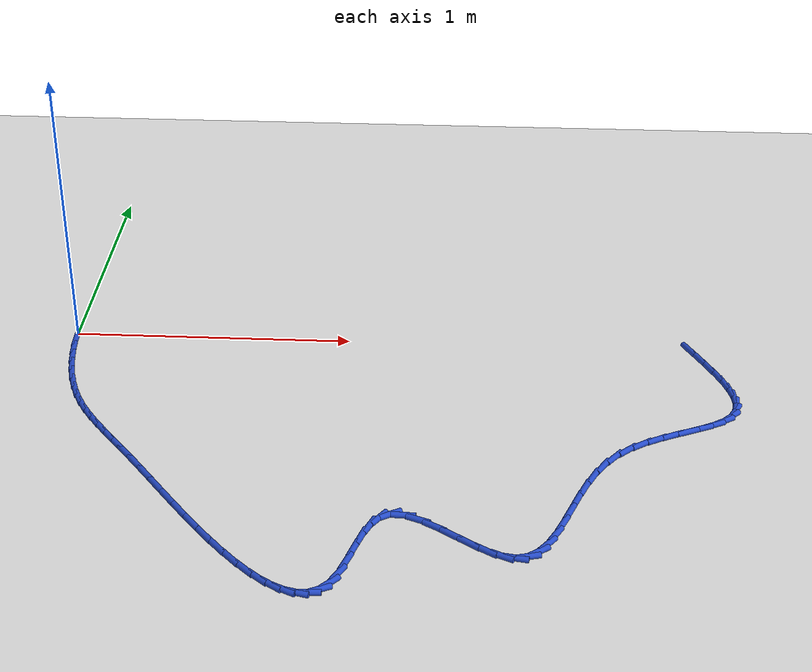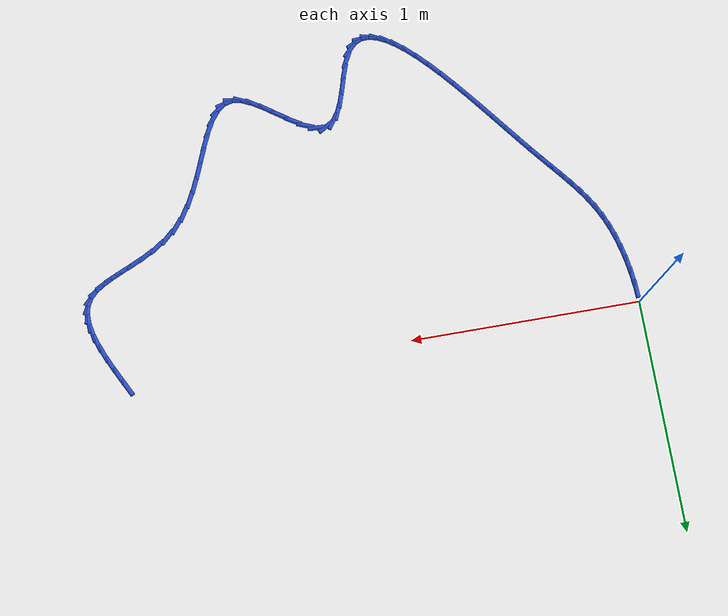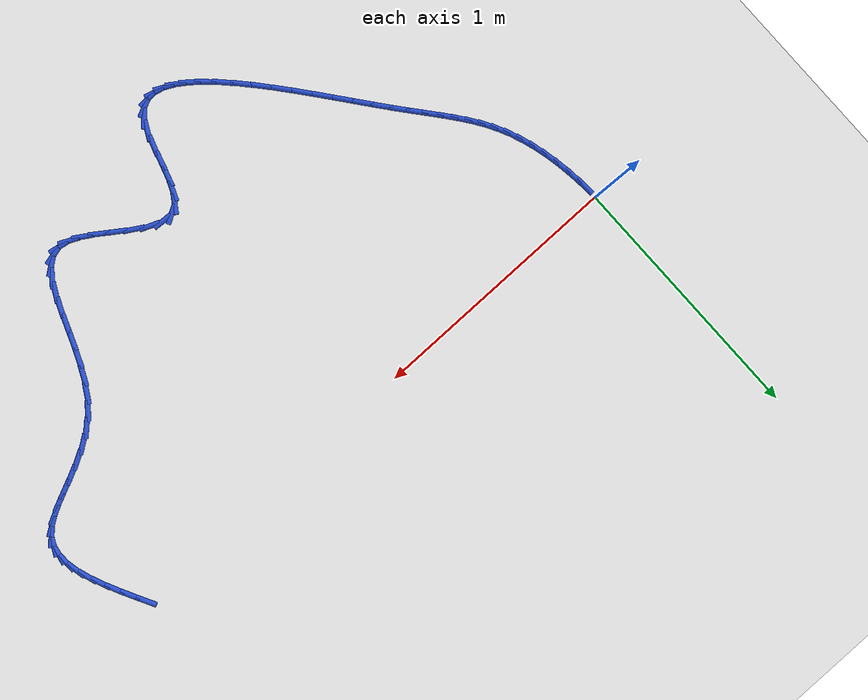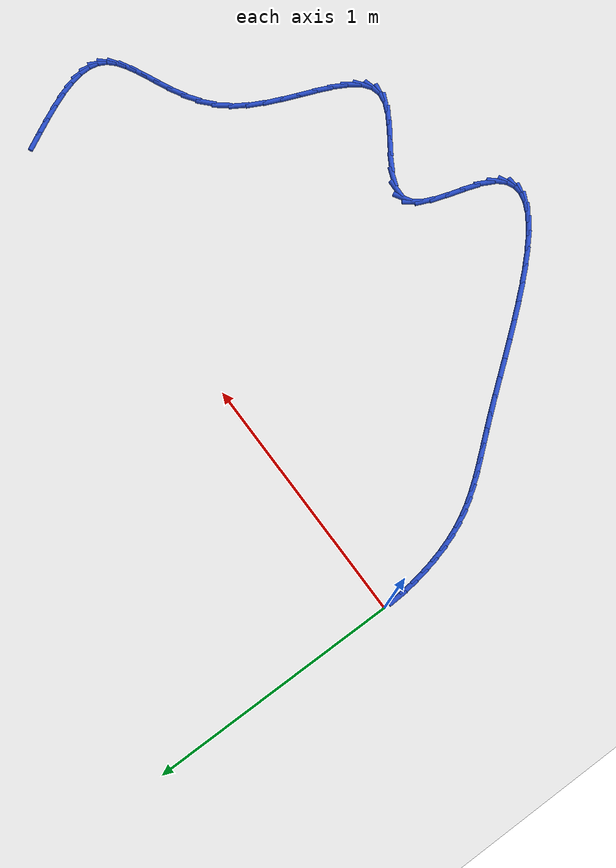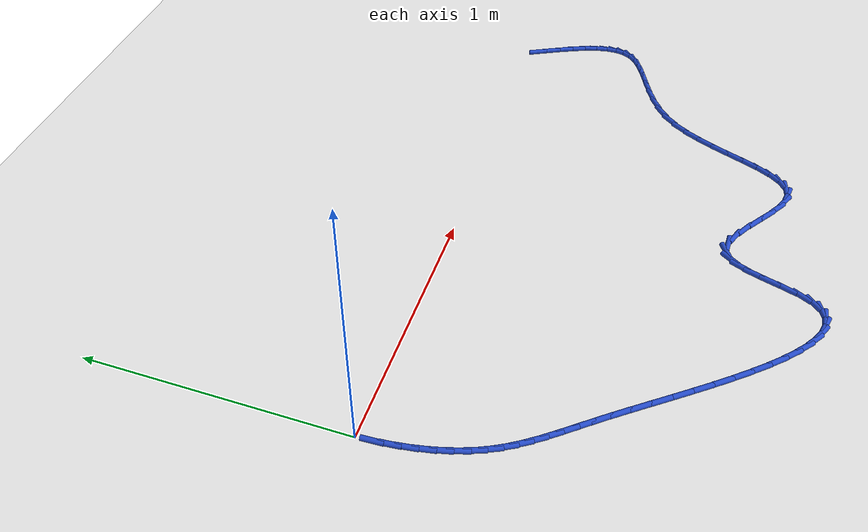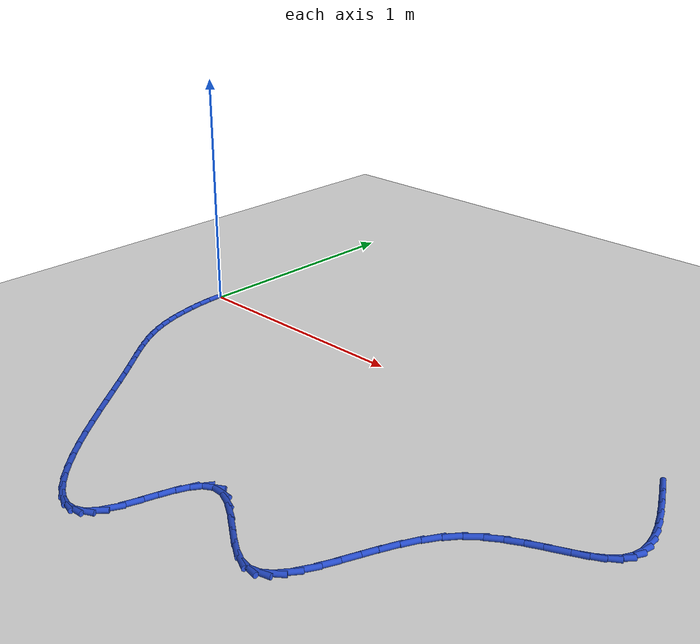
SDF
<sdf version="1.6">
 <world name="default">
  <model name="ground_plane">
   <static>1</static>
   <link name="link">
    <collision name="collision">
     <geometry><plane><normal>0 0 1</normal><size>100 100</size></plane></geometry>
     <surface><friction><ode><mu>100</mu><mu2>50</mu2></ode></friction></surface>
    </collision>
    <visual name="visual">
     <cast_shadows>0</cast_shadows>
     <geometry><plane><normal>0 0 1</normal><size>100 100</size></plane></geometry>
     <material>
      <script><uri>file://media/materials/scripts/gazebo.material</uri><name>Gazebo/WhiteGlow</name></script>
     </material>
    </visual>
   </link>
  </model>
  <model name="line">
   <link name="link_74">
    <pose>2.2299683839939872 -0.006319554969735637 0.01 0 1.57 -1.0922042768923768</pose>
    <collision name="collision">
     <geometry><cylinder><radius>0.01</radius><length>0.08</length></cylinder></geometry>
    </collision>
    <visual name="visual">
     <material>
      <script><name>Gazebo/Blue</name><uri>file://media/materials/scripts/gazebo.material</uri></script>
     </material>
     <geometry><cylinder><radius>0.01</radius><length>0.08</length></cylinder></geometry>
    </visual>
   </link>
   <link name="link_75">
    <pose>2.259123829067751 -0.0625149580404131 0.01 0 1.57 -1.1063408221054645</pose>
    <collision name="collision">
     <geometry><cylinder><radius>0.01</radius><length>0.08</length></cylinder></geometry>
    </collision>
    <visual name="visual">
     <material>
      <script><name>Gazebo/Blue</name><uri>file://media/materials/scripts/gazebo.material</uri></script>
     </material>
     <geometry><cylinder><radius>0.01</radius><length>0.08</length></cylinder></geometry>
    </visual>
   </link>
   <link name="link_76">
    <pose>2.286340790709857 -0.11683911632823811 0.01 0 1.57 -1.1362951058141415</pose>
    <collision name="collision">
     <geometry><cylinder><radius>0.01</radius><length>0.08</length></cylinder></geometry>
    </collision>
    <visual name="visual">
     <material>
      <script><name>Gazebo/Blue</name><uri>file://media/materials/scripts/gazebo.material</uri></script>
     </material>
     <geometry><cylinder><radius>0.01</radius><length>0.08</length></cylinder></geometry>
    </visual>
   </link>
   <link name="link_77">
    <pose>2.3105323561682303 -0.16896708870719052 0.01 0 1.57 -1.1861864969444749</pose>
    <collision name="collision">
     <geometry><cylinder><radius>0.01</radius><length>0.08</length></cylinder></geometry>
    </collision>
    <visual name="visual">
     <material>
      <script><name>Gazebo/Blue</name><uri>file://media/materials/scripts/gazebo.material</uri></script>
     </material>
     <geometry><cylinder><radius>0.01</radius><length>0.08</length></cylinder></geometry>
    </visual>
   </link>
   <link name="link_78">
    <pose>2.3306116126907956 -0.21857393405124986 0.01 0 1.57 -1.2627123637039737</pose>
    <collision name="collision">
     <geometry><cylinder><radius>0.01</radius><length>0.08</length></cylinder></geometry>
    </collision>
    <visual name="visual">
     <material>
      <script><name>Gazebo/Blue</name><uri>file://media/materials/scripts/gazebo.material</uri></script>
     </material>
     <geometry><cylinder><radius>0.01</radius><length>0.08</length></cylinder></geometry>
    </visual>
   </link>
   <link name="link_79">
    <pose>2.345491647525479 -0.26533471123439817 0.01 0 1.57 -1.376138724352128</pose>
    <collision name="collision">
     <geometry><cylinder><radius>0.01</radius><length>0.08</length></cylinder></geometry>
    </collision>
    <visual name="visual">
     <material>
      <script><name>Gazebo/Blue</name><uri>file://media/materials/scripts/gazebo.material</uri></script>
     </material>
     <geometry><cylinder><radius>0.01</radius><length>0.08</length></cylinder></geometry>
    </visual>
   </link>
   <link name="link_80">
    <pose>2.3540855479202034 -0.3089244791306141 0.01 0 1.57 -1.5403558208711114</pose>
    <collision name="collision">
     <geometry><cylinder><radius>0.01</radius><length>0.08</length></cylinder></geometry>
    </collision>
    <visual name="visual">
     <material>
      <script><name>Gazebo/Blue</name><uri>file://media/materials/scripts/gazebo.material</uri></script>
     </material>
     <geometry><cylinder><radius>0.01</radius><length>0.08</length></cylinder></geometry>
    </visual>
   </link>
   <link name="link_81">
    <pose>2.355306401122896 -0.34901829661387934 0.01 0 1.57 1.3738111099971873</pose>
    <collision name="collision">
     <geometry><cylinder><radius>0.01</radius><length>0.08</length></cylinder></geometry>
    </collision>
    <visual name="visual">
     <material>
      <script><name>Gazebo/Blue</name><uri>file://media/materials/scripts/gazebo.material</uri></script>
     </material>
     <geometry><cylinder><radius>0.01</radius><length>0.08</length></cylinder></geometry>
    </visual>
   </link>
   <link name="link_82">
    <pose>2.34806729438148 -0.3852912225581739 0.01 0 1.57 1.0893216006785125</pose>
    <collision name="collision">
     <geometry><cylinder><radius>0.01</radius><length>0.08</length></cylinder></geometry>
    </collision>
    <visual name="visual">
     <material>
      <script><name>Gazebo/Blue</name><uri>file://media/materials/scripts/gazebo.material</uri></script>
     </material>
     <geometry><cylinder><radius>0.01</radius><length>0.08</length></cylinder></geometry>
    </visual>
   </link>
   <link name="link_83">
    <pose>2.3312813149438822 -0.4174183158374772 0.01 0 1.57 0.7976024774090971</pose>
    <collision name="collision">
     <geometry><cylinder><radius>0.01</radius><length>0.08</length></cylinder></geometry>
    </collision>
    <visual name="visual">
     <material>
      <script><name>Gazebo/Blue</name><uri>file://media/materials/scripts/gazebo.material</uri></script>
     </material>
     <geometry><cylinder><radius>0.01</radius><length>0.08</length></cylinder></geometry>
    </visual>
   </link>
   <link name="link_84">
    <pose>2.3041346893864136 -0.44523577363365213 0.01 0 1.57 0.5924344706142887</pose>
    <collision name="collision">
     <geometry><cylinder><radius>0.01</radius><length>0.08</length></cylinder></geometry>
    </collision>
    <visual name="visual">
     <material>
      <script><name>Gazebo/Blue</name><uri>file://media/materials/scripts/gazebo.material</uri></script>
     </material>
     <geometry><cylinder><radius>0.01</radius><length>0.08</length></cylinder></geometry>
    </visual>
   </link>
   <link name="link_85">
    <pose>2.267752929605369 -0.4697238728068877 0.01 0 1.57 0.4783433600173599</pose>
    <collision name="collision">
     <geometry><cylinder><radius>0.01</radius><length>0.08</length></cylinder></geometry>
    </collision>
    <visual name="visual">
     <material>
      <script><name>Gazebo/Blue</name><uri>file://media/materials/scripts/gazebo.material</uri></script>
     </material>
     <geometry><cylinder><radius>0.01</radius><length>0.08</length></cylinder></geometry>
    </visual>
   </link>
   <link name="link_86">
    <pose>2.2241006208641996 -0.4923579008164359 0.01 0 1.57 0.4267119151776207</pose>
    <collision name="collision">
     <geometry><cylinder><radius>0.01</radius><length>0.08</length></cylinder></geometry>
    </collision>
    <visual name="visual">
     <material>
      <script><name>Gazebo/Blue</name><uri>file://media/materials/scripts/gazebo.material</uri></script>
     </material>
     <geometry><cylinder><radius>0.01</radius><length>0.08</length></cylinder></geometry>
    </visual>
   </link>
   <link name="link_87">
    <pose>2.1751457020671645 -0.5146151235990076 0.01 0 1.57 0.4201050400710591</pose>
    <collision name="collision">
     <geometry><cylinder><radius>0.01</radius><length>0.08</length></cylinder></geometry>
    </collision>
    <visual name="visual">
     <material>
      <script><name>Gazebo/Blue</name><uri>file://media/materials/scripts/gazebo.material</uri></script>
     </material>
     <geometry><cylinder><radius>0.01</radius><length>0.08</length></cylinder></geometry>
    </visual>
   </link>
   <link name="link_88">
    <pose>2.1228561121185248 -0.5379728070913146 0.01 0 1.57 0.4502485761168221</pose>
    <collision name="collision">
     <geometry><cylinder><radius>0.01</radius><length>0.08</length></cylinder></geometry>
    </collision>
    <visual name="visual">
     <material>
      <script><name>Gazebo/Blue</name><uri>file://media/materials/scripts/gazebo.material</uri></script>
     </material>
     <geometry><cylinder><radius>0.01</radius><length>0.08</length></cylinder></geometry>
    </visual>
   </link>
   <link name="link_89">
    <pose>2.0691997899225374 -0.5639082172300687 0.01 0 1.57 0.5144902913362136</pose>
    <collision name="collision">
     <geometry><cylinder><radius>0.01</radius><length>0.08</length></cylinder></geometry>
    </collision>
    <visual name="visual">
     <material>
      <script><name>Gazebo/Blue</name><uri>file://media/materials/scripts/gazebo.material</uri></script>
     </material>
     <geometry><cylinder><radius>0.01</radius><length>0.08</length></cylinder></geometry>
    </visual>
   </link>
   <link name="link_90">
    <pose>2.016144674383462 -0.5938986199519815 0.01 0 1.57 0.6131476958005838</pose>
    <collision name="collision">
     <geometry><cylinder><radius>0.01</radius><length>0.08</length></cylinder></geometry>
    </collision>
    <visual name="visual">
     <material>
      <script><name>Gazebo/Blue</name><uri>file://media/materials/scripts/gazebo.material</uri></script>
     </material>
     <geometry><cylinder><radius>0.01</radius><length>0.08</length></cylinder></geometry>
    </visual>
   </link>
   <link name="link_91">
    <pose>1.9656587044055591 -0.629421281193764 0.01 0 1.57 0.7468023027524521</pose>
    <collision name="collision">
     <geometry><cylinder><radius>0.01</radius><length>0.08</length></cylinder></geometry>
    </collision>
    <visual name="visual">
     <material>
      <script><name>Gazebo/Blue</name><uri>file://media/materials/scripts/gazebo.material</uri></script>
     </material>
     <geometry><cylinder><radius>0.01</radius><length>0.08</length></cylinder></geometry>
    </visual>
   </link>
   <link name="link_92">
    <pose>1.9197098188930868 -0.6719534668921291 0.01 0 1.57 0.902065421191802</pose>
    <collision name="collision">
     <geometry><cylinder><radius>0.01</radius><length>0.08</length></cylinder></geometry>
    </collision>
    <visual name="visual">
     <material>
      <script><name>Gazebo/Blue</name><uri>file://media/materials/scripts/gazebo.material</uri></script>
     </material>
     <geometry><cylinder><radius>0.01</radius><length>0.08</length></cylinder></geometry>
    </visual>
   </link>
   <link name="link_93">
    <pose>1.879822426590228 -0.7224316591413881 0.01 0 1.57 1.0268395971347895</pose>
    <collision name="collision">
     <geometry><cylinder><radius>0.01</radius><length>0.08</length></cylinder></geometry>
    </collision>
    <visual name="visual">
     <material>
      <script><name>Gazebo/Blue</name><uri>file://media/materials/scripts/gazebo.material</uri></script>
     </material>
     <geometry><cylinder><radius>0.01</radius><length>0.08</length></cylinder></geometry>
    </visual>
   </link>
   <link name="link_94">
    <pose>1.845448296680701 -0.7792652289478047 0.01 0 1.57 1.1126363051756467</pose>
    <collision name="collision">
     <geometry><cylinder><radius>0.01</radius><length>0.08</length></cylinder></geometry>
    </collision>
    <visual name="visual">
     <material>
      <script><name>Gazebo/Blue</name><uri>file://media/materials/scripts/gazebo.material</uri></script>
     </material>
     <geometry><cylinder><radius>0.01</radius><length>0.08</length></cylinder></geometry>
    </visual>
   </link>
   <link name="link_95">
    <pose>1.8154342629567497 -0.840125966618846 0.01 0 1.57 1.1659597023779358</pose>
    <collision name="collision">
     <geometry><cylinder><radius>0.01</radius><length>0.08</length></cylinder></geometry>
    </collision>
    <visual name="visual">
     <material>
      <script><name>Gazebo/Blue</name><uri>file://media/materials/scripts/gazebo.material</uri></script>
     </material>
     <geometry><cylinder><radius>0.01</radius><length>0.08</length></cylinder></geometry>
    </visual>
   </link>
   <link name="link_96">
    <pose>1.7886270870784948 -0.902685574513312 0.01 0 1.57 1.1905477166966383</pose>
    <collision name="collision">
     <geometry><cylinder><radius>0.01</radius><length>0.08</length></cylinder></geometry>
    </collision>
    <visual name="visual">
     <material>
      <script><name>Gazebo/Blue</name><uri>file://media/materials/scripts/gazebo.material</uri></script>
     </material>
     <geometry><cylinder><radius>0.01</radius><length>0.08</length></cylinder></geometry>
    </visual>
   </link>
   <link name="link_97">
    <pose>1.7638735307060573 -0.964615754990007 0.01 0 1.57 1.1864339087499163</pose>
    <collision name="collision">
     <geometry><cylinder><radius>0.01</radius><length>0.08</length></cylinder></geometry>
    </collision>
    <visual name="visual">
     <material>
      <script><name>Gazebo/Blue</name><uri>file://media/materials/scripts/gazebo.material</uri></script>
     </material>
     <geometry><cylinder><radius>0.01</radius><length>0.08</length></cylinder></geometry>
    </visual>
   </link>
   <link name="link_98">
    <pose>1.7400203554995584 -1.0235882104077298 0.01 0 1.57 1.1487615380157024</pose>
    <collision name="collision">
     <geometry><cylinder><radius>0.01</radius><length>0.08</length></cylinder></geometry>
    </collision>
    <visual name="visual">
     <material>
      <script><name>Gazebo/Blue</name><uri>file://media/materials/scripts/gazebo.material</uri></script>
     </material>
     <geometry><cylinder><radius>0.01</radius><length>0.08</length></cylinder></geometry>
    </visual>
   </link>
   <link name="link_99">
    <pose>1.7159143231191183 -1.0772746431252849 0.01 0 1.57 1.0650836523124063</pose>
    <collision name="collision">
     <geometry><cylinder><radius>0.01</radius><length>0.08</length></cylinder></geometry>
    </collision>
    <visual name="visual">
     <material>
      <script><name>Gazebo/Blue</name><uri>file://media/materials/scripts/gazebo.material</uri></script>
     </material>
     <geometry><cylinder><radius>0.01</radius><length>0.08</length></cylinder></geometry>
    </visual>
   </link>
   <link name="link_100">
    <pose>1.6904021952248585 -1.1233467555014724 0.01 0 1.57 0.9102578969189291</pose>
    <collision name="collision">
     <geometry><cylinder><radius>0.01</radius><length>0.08</length></cylinder></geometry>
    </collision>
    <visual name="visual">
     <material>
      <script><name>Gazebo/Blue</name><uri>file://media/materials/scripts/gazebo.material</uri></script>
     </material>
     <geometry><cylinder><radius>0.01</radius><length>0.08</length></cylinder></geometry>
    </visual>
   </link>
   <link name="link_101">
    <pose>1.6623307334769009 -1.1594762498950932 0.01 0 1.57 0.6439148397358285</pose>
    <collision name="collision">
     <geometry><cylinder><radius>0.01</radius><length>0.08</length></cylinder></geometry>
    </collision>
    <visual name="visual">
     <material>
      <script><name>Gazebo/Blue</name><uri>file://media/materials/scripts/gazebo.material</uri></script>
     </material>
     <geometry><cylinder><radius>0.01</radius><length>0.08</length></cylinder></geometry>
    </visual>
   </link>
   <link name="link_102">
    <pose>1.6305466995353646 -1.1833348286649503 0.01 0 1.57 0.24746563778720343</pose>
    <collision name="collision">
     <geometry><cylinder><radius>0.01</radius><length>0.08</length></cylinder></geometry>
    </collision>
    <visual name="visual">
     <material>
      <script><name>Gazebo/Blue</name><uri>file://media/materials/scripts/gazebo.material</uri></script>
     </material>
     <geometry><cylinder><radius>0.01</radius><length>0.08</length></cylinder></geometry>
    </visual>
   </link>
   <link name="link_103">
    <pose>1.5938968550603718 -1.1925941941698446 0.01 0 1.57 -0.17450461990742774</pose>
    <collision name="collision">
     <geometry><cylinder><radius>0.01</radius><length>0.08</length></cylinder></geometry>
    </collision>
    <visual name="visual">
     <material>
      <script><name>Gazebo/Blue</name><uri>file://media/materials/scripts/gazebo.material</uri></script>
     </material>
     <geometry><cylinder><radius>0.01</radius><length>0.08</length></cylinder></geometry>
    </visual>
   </link>
   <link name="link_104">
    <pose>1.5512905062631321 -1.185082788801884 0.01 0 1.57 -0.44148129106460243</pose>
    <collision name="collision">
     <geometry><cylinder><radius>0.01</radius><length>0.08</length></cylinder></geometry>
    </collision>
    <visual name="visual">
     <material>
      <script><name>Gazebo/Blue</name><uri>file://media/materials/scripts/gazebo.material</uri></script>
     </material>
     <geometry><cylinder><radius>0.01</radius><length>0.08</length></cylinder></geometry>
    </visual>
   </link>
   <link name="link_105">
    <pose>1.5031063224754593 -1.1623113585345004 0.01 0 1.57 -0.5635658494570346</pose>
    <collision name="collision">
     <geometry><cylinder><radius>0.01</radius><length>0.08</length></cylinder></geometry>
    </collision>
    <visual name="visual">
     <material>
      <script><name>Gazebo/Blue</name><uri>file://media/materials/scripts/gazebo.material</uri></script>
     </material>
     <geometry><cylinder><radius>0.01</radius><length>0.08</length></cylinder></geometry>
    </visual>
   </link>
   <link name="link_106">
    <pose>1.4512096756053527 -1.1295164065374654 0.01 0 1.57 -0.6087493829037802</pose>
    <collision name="collision">
     <geometry><cylinder><radius>0.01</radius><length>0.08</length></cylinder></geometry>
    </collision>
    <visual name="visual">
     <material>
      <script><name>Gazebo/Blue</name><uri>file://media/materials/scripts/gazebo.material</uri></script>
     </material>
     <geometry><cylinder><radius>0.01</radius><length>0.08</length></cylinder></geometry>
    </visual>
   </link>
   <link name="link_107">
    <pose>1.3975319501526307 -1.0920998671118147 0.01 0 1.57 -0.6002050422156614</pose>
    <collision name="collision">
     <geometry><cylinder><radius>0.01</radius><length>0.08</length></cylinder></geometry>
    </collision>
    <visual name="visual">
     <material>
      <script><name>Gazebo/Blue</name><uri>file://media/materials/scripts/gazebo.material</uri></script>
     </material>
     <geometry><cylinder><radius>0.01</radius><length>0.08</length></cylinder></geometry>
    </visual>
   </link>
   <link name="link_108">
    <pose>1.344004530617115 -1.055463674558586 0.01 0 1.57 -0.5344881655870558</pose>
    <collision name="collision">
     <geometry><cylinder><radius>0.01</radius><length>0.08</length></cylinder></geometry>
    </collision>
    <visual name="visual">
     <material>
      <script><name>Gazebo/Blue</name><uri>file://media/materials/scripts/gazebo.material</uri></script>
     </material>
     <geometry><cylinder><radius>0.01</radius><length>0.08</length></cylinder></geometry>
    </visual>
   </link>
   <link name="link_109">
    <pose>1.2925588014986265 -1.025009763178817 0.01 0 1.57 -0.3786263361455057</pose>
    <collision name="collision">
     <geometry><cylinder><radius>0.01</radius><length>0.08</length></cylinder></geometry>
    </collision>
    <visual name="visual">
     <material>
      <script><name>Gazebo/Blue</name><uri>file://media/materials/scripts/gazebo.material</uri></script>
     </material>
     <geometry><cylinder><radius>0.01</radius><length>0.08</length></cylinder></geometry>
    </visual>
   </link>
   <link name="link_110">
    <pose>1.245126147296984 -1.0061400672735437 0.01 0 1.57 -0.04536841541199422</pose>
    <collision name="collision">
     <geometry><cylinder><radius>0.01</radius><length>0.08</length></cylinder></geometry>
    </collision>
    <visual name="visual">
     <material>
      <script><name>Gazebo/Blue</name><uri>file://media/materials/scripts/gazebo.material</uri></script>
     </material>
     <geometry><cylinder><radius>0.01</radius><length>0.08</length></cylinder></geometry>
    </visual>
   </link>
   <link name="link_111">
    <pose>1.203637952512009 -1.004256521143804 0.01 0 1.57 0.5296415931006878</pose>
    <collision name="collision">
     <geometry><cylinder><radius>0.01</radius><length>0.08</length></cylinder></geometry>
    </collision>
    <visual name="visual">
     <material>
      <script><name>Gazebo/Blue</name><uri>file://media/materials/scripts/gazebo.material</uri></script>
     </material>
     <geometry><cylinder><radius>0.01</radius><length>0.08</length></cylinder></geometry>
    </visual>
   </link>
   <link name="link_112">
    <pose>1.169790103126992 -1.0240722593952762 0.01 0 1.57 0.9711557230959347</pose>
    <collision name="collision">
     <geometry><cylinder><radius>0.01</radius><length>0.08</length></cylinder></geometry>
    </collision>
    <visual name="visual">
     <material>
      <script><name>Gazebo/Blue</name><uri>file://media/materials/scripts/gazebo.material</uri></script>
     </material>
     <geometry><cylinder><radius>0.01</radius><length>0.08</length></cylinder></geometry>
    </visual>
   </link>
   <link name="link_113">
    <pose>1.1429145992257956 -1.0633863862975745 0.01 0 1.57 1.1758360274266306</pose>
    <collision name="collision">
     <geometry><cylinder><radius>0.01</radius><length>0.08</length></cylinder></geometry>
    </collision>
    <visual name="visual">
     <material>
      <script><name>Gazebo/Blue</name><uri>file://media/materials/scripts/gazebo.material</uri></script>
     </material>
     <geometry><cylinder><radius>0.01</radius><length>0.08</length></cylinder></geometry>
    </visual>
   </link>
   <link name="link_114">
    <pose>1.1209789131187369 -1.116006956288762 0.01 0 1.57 1.2619275055778354</pose>
    <collision name="collision">
     <geometry><cylinder><radius>0.01</radius><length>0.08</length></cylinder></geometry>
    </collision>
    <visual name="visual">
     <material>
      <script><name>Gazebo/Blue</name><uri>file://media/materials/scripts/gazebo.material</uri></script>
     </material>
     <geometry><cylinder><radius>0.01</radius><length>0.08</length></cylinder></geometry>
    </visual>
   </link>
   <link name="link_115">
    <pose>1.1019340105336337 -1.1756937443987663 0.01 0 1.57 1.2785919779409618</pose>
    <collision name="collision">
     <geometry><cylinder><radius>0.01</radius><length>0.08</length></cylinder></geometry>
    </collision>
    <visual name="visual">
     <material>
      <script><name>Gazebo/Blue</name><uri>file://media/materials/scripts/gazebo.material</uri></script>
     </material>
     <geometry><cylinder><radius>0.01</radius><length>0.08</length></cylinder></geometry>
    </visual>
   </link>
   <link name="link_116">
    <pose>1.0837308571983046 -1.236206525657512 0.01 0 1.57 1.2320865841872812</pose>
    <collision name="collision">
     <geometry><cylinder><radius>0.01</radius><length>0.08</length></cylinder></geometry>
    </collision>
    <visual name="visual">
     <material>
      <script><name>Gazebo/Blue</name><uri>file://media/materials/scripts/gazebo.material</uri></script>
     </material>
     <geometry><cylinder><radius>0.01</radius><length>0.08</length></cylinder></geometry>
    </visual>
   </link>
   <link name="link_117">
    <pose>1.0643204188405693 -1.2913050750949246 0.01 0 1.57 1.0908135275455617</pose>
    <collision name="collision">
     <geometry><cylinder><radius>0.01</radius><length>0.08</length></cylinder></geometry>
    </collision>
    <visual name="visual">
     <material>
      <script><name>Gazebo/Blue</name><uri>file://media/materials/scripts/gazebo.material</uri></script>
     </material>
     <geometry><cylinder><radius>0.01</radius><length>0.08</length></cylinder></geometry>
    </visual>
   </link>
   <link name="link_118">
    <pose>1.0416731814579454 -1.3348081805816396 0.01 0 1.57 0.8153977529518763</pose>
    <collision name="collision">
     <geometry><cylinder><radius>0.01</radius><length>0.08</length></cylinder></geometry>
    </collision>
    <visual name="visual">
     <material>
      <script><name>Gazebo/Blue</name><uri>file://media/materials/scripts/gazebo.material</uri></script>
     </material>
     <geometry><cylinder><radius>0.01</radius><length>0.08</length></cylinder></geometry>
    </visual>
   </link>
   <link name="link_119">
    <pose>1.014717817710756 -1.3634313787406962 0.01 0 1.57 0.4409889785306531</pose>
    <collision name="collision">
     <geometry><cylinder><radius>0.01</radius><length>0.08</length></cylinder></geometry>
    </collision>
    <visual name="visual">
     <material>
      <script><name>Gazebo/Blue</name><uri>file://media/materials/scripts/gazebo.material</uri></script>
     </material>
     <geometry><cylinder><radius>0.01</radius><length>0.08</length></cylinder></geometry>
    </visual>
   </link>
   <link name="link_120">
    <pose>0.9837571513578881 -1.3780444807586554 0.01 0 1.57 0.051856923489776774</pose>
    <collision name="collision">
     <geometry><cylinder><radius>0.01</radius><length>0.08</length></cylinder></geometry>
    </collision>
    <visual name="visual">
     <material>
      <script><name>Gazebo/Blue</name><uri>file://media/materials/scripts/gazebo.material</uri></script>
     </material>
     <geometry><cylinder><radius>0.01</radius><length>0.08</length></cylinder></geometry>
    </visual>
   </link>
   <link name="link_121">
    <pose>0.9492001243974414 -1.3798381099237047 0.01 0 1.57 -0.25490561904372655</pose>
    <collision name="collision">
     <geometry><cylinder><radius>0.01</radius><length>0.08</length></cylinder></geometry>
    </collision>
    <visual name="visual">
     <material>
      <script><name>Gazebo/Blue</name><uri>file://media/materials/scripts/gazebo.material</uri></script>
     </material>
     <geometry><cylinder><radius>0.01</radius><length>0.08</length></cylinder></geometry>
    </visual>
   </link>
   <link name="link_122">
    <pose>0.9114556788275154 -1.37000288952403 0.01 0 1.57 -0.46388419939168096</pose>
    <collision name="collision">
     <geometry><cylinder><radius>0.01</radius><length>0.08</length></cylinder></geometry>
    </collision>
    <visual name="visual">
     <material>
      <script><name>Gazebo/Blue</name><uri>file://media/materials/scripts/gazebo.material</uri></script>
     </material>
     <geometry><cylinder><radius>0.01</radius><length>0.08</length></cylinder></geometry>
    </visual>
   </link>
   <link name="link_123">
    <pose>0.8709327566462087 -1.349729442847818 0.01 0 1.57 -0.602801455201303</pose>
    <collision name="collision">
     <geometry><cylinder><radius>0.01</radius><length>0.08</length></cylinder></geometry>
    </collision>
    <visual name="visual">
     <material>
      <script><name>Gazebo/Blue</name><uri>file://media/materials/scripts/gazebo.material</uri></script>
     </material>
     <geometry><cylinder><radius>0.01</radius><length>0.08</length></cylinder></geometry>
    </visual>
   </link>
   <link name="link_124">
    <pose>0.8280402998516205 -1.3202083931832556 0.01 0 1.57 -0.6973704515516351</pose>
    <collision name="collision">
     <geometry><cylinder><radius>0.01</radius><length>0.08</length></cylinder></geometry>
    </collision>
    <visual name="visual">
     <material>
      <script><name>Gazebo/Blue</name><uri>file://media/materials/scripts/gazebo.material</uri></script>
     </material>
     <geometry><cylinder><radius>0.01</radius><length>0.08</length></cylinder></geometry>
    </visual>
   </link>
   <link name="link_125">
    <pose>0.7831872504418511 -1.2826303638185297 0.01 0 1.57 -0.7638238120553639</pose>
    <collision name="collision">
     <geometry><cylinder><radius>0.01</radius><length>0.08</length></cylinder></geometry>
    </collision>
    <visual name="visual">
     <material>
      <script><name>Gazebo/Blue</name><uri>file://media/materials/scripts/gazebo.material</uri></script>
     </material>
     <geometry><cylinder><radius>0.01</radius><length>0.08</length></cylinder></geometry>
    </visual>
   </link>
   <link name="link_126">
    <pose>0.7367825504149987 -1.2381859780418267 0.01 0 1.57 -0.811733584394263</pose>
    <collision name="collision">
     <geometry><cylinder><radius>0.01</radius><length>0.08</length></cylinder></geometry>
    </collision>
    <visual name="visual">
     <material>
      <script><name>Gazebo/Blue</name><uri>file://media/materials/scripts/gazebo.material</uri></script>
     </material>
     <geometry><cylinder><radius>0.01</radius><length>0.08</length></cylinder></geometry>
    </visual>
   </link>
   <link name="link_127">
    <pose>0.6892351417691639 -1.1880658591413342 0.01 0 1.57 -0.8467872964309262</pose>
    <collision name="collision">
     <geometry><cylinder><radius>0.01</radius><length>0.08</length></cylinder></geometry>
    </collision>
    <visual name="visual">
     <material>
      <script><name>Gazebo/Blue</name><uri>file://media/materials/scripts/gazebo.material</uri></script>
     </material>
     <geometry><cylinder><radius>0.01</radius><length>0.08</length></cylinder></geometry>
    </visual>
   </link>
   <link name="link_128">
    <pose>0.6409539665024443 -1.1334606304052373 0.01 0 1.57 -0.8724379436107929</pose>
    <collision name="collision">
     <geometry><cylinder><radius>0.01</radius><length>0.08</length></cylinder></geometry>
    </collision>
    <visual name="visual">
     <material>
      <script><name>Gazebo/Blue</name><uri>file://media/materials/scripts/gazebo.material</uri></script>
     </material>
     <geometry><cylinder><radius>0.01</radius><length>0.08</length></cylinder></geometry>
    </visual>
   </link>
   <link name="link_129">
    <pose>0.5923479666129398 -1.0755609151217227 0.01 0 1.57 -0.8908033180707602</pose>
    <collision name="collision">
     <geometry><cylinder><radius>0.01</radius><length>0.08</length></cylinder></geometry>
    </collision>
    <visual name="visual">
     <material>
      <script><name>Gazebo/Blue</name><uri>file://media/materials/scripts/gazebo.material</uri></script>
     </material>
     <geometry><cylinder><radius>0.01</radius><length>0.08</length></cylinder></geometry>
    </visual>
   </link>
   <link name="link_130">
    <pose>0.5438260840987504 -1.0155573365789794 0.01 0 1.57 -0.9031484057669649</pose>
    <collision name="collision">
     <geometry><cylinder><radius>0.01</radius><length>0.08</length></cylinder></geometry>
    </collision>
    <visual name="visual">
     <material>
      <script><name>Gazebo/Blue</name><uri>file://media/materials/scripts/gazebo.material</uri></script>
     </material>
     <geometry><cylinder><radius>0.01</radius><length>0.08</length></cylinder></geometry>
    </visual>
   </link>
   <link name="link_131">
    <pose>0.4957972609579745 -0.9546405180651913 0.01 0 1.57 -0.9101353348853791</pose>
    <collision name="collision">
     <geometry><cylinder><radius>0.01</radius><length>0.08</length></cylinder></geometry>
    </collision>
    <visual name="visual">
     <material>
      <script><name>Gazebo/Blue</name><uri>file://media/materials/scripts/gazebo.material</uri></script>
     </material>
     <geometry><cylinder><radius>0.01</radius><length>0.08</length></cylinder></geometry>
    </visual>
   </link>
   <link name="link_132">
    <pose>0.44867043918871213 -0.8940010828685472 0.01 0 1.57 -0.9119296395037867</pose>
    <collision name="collision">
     <geometry><cylinder><radius>0.01</radius><length>0.08</length></cylinder></geometry>
    </collision>
    <visual name="visual">
     <material>
      <script><name>Gazebo/Blue</name><uri>file://media/materials/scripts/gazebo.material</uri></script>
     </material>
     <geometry><cylinder><radius>0.01</radius><length>0.08</length></cylinder></geometry>
    </visual>
   </link>
   <link name="link_133">
    <pose>0.4028545607890613 -0.8348296542772315 0.01 0 1.57 -0.9081939196930185</pose>
    <collision name="collision">
     <geometry><cylinder><radius>0.01</radius><length>0.08</length></cylinder></geometry>
    </collision>
    <visual name="visual">
     <material>
      <script><name>Gazebo/Blue</name><uri>file://media/materials/scripts/gazebo.material</uri></script>
     </material>
     <geometry><cylinder><radius>0.01</radius><length>0.08</length></cylinder></geometry>
    </visual>
   </link>
   <link name="link_134">
    <pose>0.3587585677571222 -0.778316855579433 0.01 0 1.57 -0.8980597775120849</pose>
    <collision name="collision">
     <geometry><cylinder><radius>0.01</radius><length>0.08</length></cylinder></geometry>
    </collision>
    <visual name="visual">
     <material>
      <script><name>Gazebo/Blue</name><uri>file://media/materials/scripts/gazebo.material</uri></script>
     </material>
     <geometry><cylinder><radius>0.01</radius><length>0.08</length></cylinder></geometry>
    </visual>
   </link>
   <link name="link_135">
    <pose>0.31678905430629095 -0.7256388558164238 0.01 0 1.57 -0.8862975275433108</pose>
    <collision name="collision">
     <geometry><cylinder><radius>0.01</radius><length>0.08</length></cylinder></geometry>
    </collision>
    <visual name="visual">
     <material>
      <script><name>Gazebo/Blue</name><uri>file://media/materials/scripts/gazebo.material</uri></script>
     </material>
     <geometry><cylinder><radius>0.01</radius><length>0.08</length></cylinder></geometry>
    </visual>
   </link>
   <link name="link_136">
    <pose>0.27721993408971185 -0.6771549699220258 0.01 0 1.57 -0.8832141395624851</pose>
    <collision name="collision">
     <geometry><cylinder><radius>0.01</radius><length>0.08</length></cylinder></geometry>
    </collision>
    <visual name="visual">
     <material>
      <script><name>Gazebo/Blue</name><uri>file://media/materials/scripts/gazebo.material</uri></script>
     </material>
     <geometry><cylinder><radius>0.01</radius><length>0.08</length></cylinder></geometry>
    </visual>
   </link>
   <link name="link_137">
    <pose>0.2401240399161545 -0.6319865491574 0.01 0 1.57 -0.8918176510583953</pose>
    <collision name="collision">
     <geometry><cylinder><radius>0.01</radius><length>0.08</length></cylinder></geometry>
    </collision>
    <visual name="visual">
     <material>
      <script><name>Gazebo/Blue</name><uri>file://media/materials/scripts/gazebo.material</uri></script>
     </material>
     <geometry><cylinder><radius>0.01</radius><length>0.08</length></cylinder></geometry>
    </visual>
   </link>
   <link name="link_138">
    <pose>0.2055574310865524 -0.5891516778940697 0.01 0 1.57 -0.9140250797751732</pose>
    <collision name="collision">
     <geometry><cylinder><radius>0.01</radius><length>0.08</length></cylinder></geometry>
    </collision>
    <visual name="visual">
     <material>
      <script><name>Gazebo/Blue</name><uri>file://media/materials/scripts/gazebo.material</uri></script>
     </material>
     <geometry><cylinder><radius>0.01</radius><length>0.08</length></cylinder></geometry>
    </visual>
   </link>
   <link name="link_139">
    <pose>0.1735761669018369 -0.5476684405035549 0.01 0 1.57 -0.9509808492791466</pose>
    <collision name="collision">
     <geometry><cylinder><radius>0.01</radius><length>0.08</length></cylinder></geometry>
    </collision>
    <visual name="visual">
     <material>
      <script><name>Gazebo/Blue</name><uri>file://media/materials/scripts/gazebo.material</uri></script>
     </material>
     <geometry><cylinder><radius>0.01</radius><length>0.08</length></cylinder></geometry>
    </visual>
   </link>
   <link name="link_140">
    <pose>0.14423630666294177 -0.5065549213573786 0.01 0 1.57 -1.0025390201718276</pose>
    <collision name="collision">
     <geometry><cylinder><radius>0.01</radius><length>0.08</length></cylinder></geometry>
    </collision>
    <visual name="visual">
     <material>
      <script><name>Gazebo/Blue</name><uri>file://media/materials/scripts/gazebo.material</uri></script>
     </material>
     <geometry><cylinder><radius>0.01</radius><length>0.08</length></cylinder></geometry>
    </visual>
   </link>
   <link name="link_141">
    <pose>0.11759390967079866 -0.46482920482706136 0.01 0 1.57 -1.0668378199420805</pose>
    <collision name="collision">
     <geometry><cylinder><radius>0.01</radius><length>0.08</length></cylinder></geometry>
    </collision>
    <visual name="visual">
     <material>
      <script><name>Gazebo/Blue</name><uri>file://media/materials/scripts/gazebo.material</uri></script>
     </material>
     <geometry><cylinder><radius>0.01</radius><length>0.08</length></cylinder></geometry>
    </visual>
   </link>
   <link name="link_142">
    <pose>0.09370503522634085 -0.42150937528412574 0.01 0 1.57 -1.1395908849427907</pose>
    <collision name="collision">
     <geometry><cylinder><radius>0.01</radius><length>0.08</length></cylinder></geometry>
    </collision>
    <visual name="visual">
     <material>
      <script><name>Gazebo/Blue</name><uri>file://media/materials/scripts/gazebo.material</uri></script>
     </material>
     <geometry><cylinder><radius>0.01</radius><length>0.08</length></cylinder></geometry>
    </visual>
   </link>
   <link name="link_143">
    <pose>0.07262009124677343 -0.3756805922220617 0.01 0 1.57 -1.2099736559284424</pose>
    <collision name="collision">
     <geometry><cylinder><radius>0.01</radius><length>0.08</length></cylinder></geometry>
    </collision>
    <visual name="visual">
     <material>
      <script><name>Gazebo/Blue</name><uri>file://media/materials/scripts/gazebo.material</uri></script>
     </material>
     <geometry><cylinder><radius>0.01</radius><length>0.08</length></cylinder></geometry>
    </visual>
   </link>
   <link name="link_144">
    <pose>0.05432478325521576 -0.32719595466629475 0.01 0 1.57 -1.2735343553523955</pose>
    <collision name="collision">
     <geometry><cylinder><radius>0.01</radius><length>0.08</length></cylinder></geometry>
    </collision>
    <visual name="visual">
     <material>
      <script><name>Gazebo/Blue</name><uri>file://media/materials/scripts/gazebo.material</uri></script>
     </material>
     <geometry><cylinder><radius>0.01</radius><length>0.08</length></cylinder></geometry>
    </visual>
   </link>
   <link name="link_145">
    <pose>0.038763540925897455 -0.27639845628257004 0.01 0 1.57 -1.3312918094955395</pose>
    <collision name="collision">
     <geometry><cylinder><radius>0.01</radius><length>0.08</length></cylinder></geometry>
    </collision>
    <visual name="visual">
     <material>
      <script><name>Gazebo/Blue</name><uri>file://media/materials/scripts/gazebo.material</uri></script>
     </material>
     <geometry><cylinder><radius>0.01</radius><length>0.08</length></cylinder></geometry>
    </visual>
   </link>
   <link name="link_146">
    <pose>0.025880126709878253 -0.22363900987246985 0.01 0 1.57 -1.3842518438351714</pose>
    <collision name="collision">
     <geometry><cylinder><radius>0.01</radius><length>0.08</length></cylinder></geometry>
    </collision>
    <visual name="visual">
     <material>
      <script><name>Gazebo/Blue</name><uri>file://media/materials/scripts/gazebo.material</uri></script>
     </material>
     <geometry><cylinder><radius>0.01</radius><length>0.08</length></cylinder></geometry>
    </visual>
   </link>
   <link name="link_147">
    <pose>0.015618303058218663 -0.16926852823757862 0.01 0 1.57 -1.4333194456509997</pose>
    <collision name="collision">
     <geometry><cylinder><radius>0.01</radius><length>0.08</length></cylinder></geometry>
    </collision>
    <visual name="visual">
     <material>
      <script><name>Gazebo/Blue</name><uri>file://media/materials/scripts/gazebo.material</uri></script>
     </material>
     <geometry><cylinder><radius>0.01</radius><length>0.08</length></cylinder></geometry>
    </visual>
   </link>
   <link name="link_148">
    <pose>0.00792183242197903 -0.11363792417948133 0.01 0 1.57 -1.4793055162316011</pose>
    <collision name="collision">
     <geometry><cylinder><radius>0.01</radius><length>0.08</length></cylinder></geometry>
    </collision>
    <visual name="visual">
     <material>
      <script><name>Gazebo/Blue</name><uri>file://media/materials/scripts/gazebo.material</uri></script>
     </material>
     <geometry><cylinder><radius>0.01</radius><length>0.08</length></cylinder></geometry>
    </visual>
   </link>
   <link name="link_149">
    <pose>0.002734477252219339 -0.05709811049975985 0.01 0 1.57 -1.5229420359662047</pose>
    <collision name="collision">
     <geometry><cylinder><radius>0.01</radius><length>0.08</length></cylinder></geometry>
    </collision>
    <visual name="visual">
     <material>
      <script><name>Gazebo/Blue</name><uri>file://media/materials/scripts/gazebo.material</uri></script>
     </material>
     <geometry><cylinder><radius>0.01</radius><length>0.08</length></cylinder></geometry>
    </visual>
   </link>
  </model>
 </world>
</sdf>
